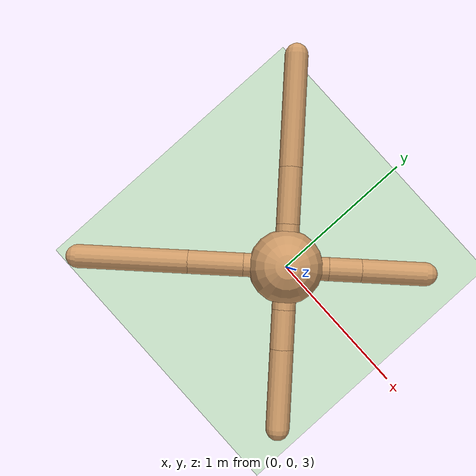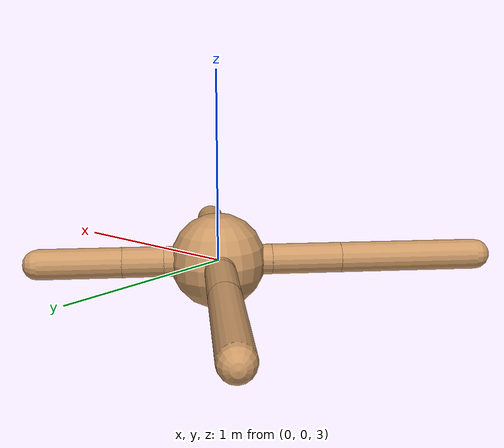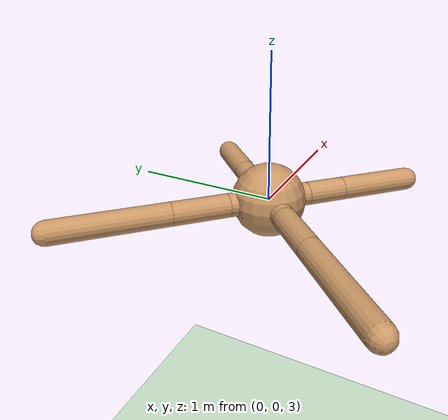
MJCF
<mujoco model="ant">
  <compiler angle="degree" coordinate="local" inertiafromgeom="true" />
  <option integrator="RK4" timestep="0.02" />
  <custom>
    <numeric data="0.0 0.0 0.55 1.0 0.0 0.0 0.0 0.0 1.0 0.0 -1.0 0.0 -1.0 0.0 1.0" name="init_qpos" />
  </custom>
  <default>
    <joint armature="1" damping="1" limited="true" />
    <geom conaffinity="0" condim="3" density="5.0" friction="1 0.5 0.5" margin="0.01" rgba="0.8 0.6 0.4 1" solimp=".8 .8 .01" solref=".02 1" />
  </default>
  <asset>
    <texture builtin="gradient" height="100" rgb1="1 1 1" rgb2="0 0 0" type="skybox" width="100" />
    <texture builtin="flat" height="1278" mark="cross" markrgb="1 1 1" name="texgeom" random="0.01" rgb1="0.8 0.6 0.4" rgb2="0.8 0.6 0.4" type="cube" width="127" />
    <texture builtin="checker" height="100" name="texplane" rgb1="0 0 0" rgb2="0.8 0.8 0.8" type="2d" width="100" />
    <material name="MatPlane" reflectance="0.5" shininess="1" specular="1" texrepeat="60 60" texture="texplane" />
    <material name="geom" texture="texgeom" texuniform="true" />
  </asset>
  <worldbody>
    <light cutoff="100" diffuse="1 1 1" dir="-0 0 -1.3" directional="true" exponent="1" pos="0 0 1.3" specular=".1 .1 .1" />
    <geom conaffinity="1" condim="3" material="MatPlane" name="floor" pos="0 0 0" rgba="0.8 0.9 0.8 1" size="40 40 40" type="plane" />
    <body name="torso" pos="0 0 3.0">
      <geom density="1000" name="torso_geom" pos="0 0 0" size="0.25" type="sphere" />
      <joint armature="0" axis="0 0 1" damping="0" limited="false" margin="0.01" name="root" pos="0 0 0" type="free" />
      <body name="front_left_leg" pos="0 0 0">
        <geom fromto="0.0 0.0 0.0 0.2 0.2 0.0" name="aux_1_geom" size="0.08" type="capsule" />
        <body name="aux_1" pos="0.2 0.2 0">
          <joint axis="0 0 1" name="hip_1" pos="0.0 0.0 0.0" range="-30 30" type="hinge" />
          <geom fromto="0.0 0.0 0.0 0.15237608082070406 0.15237608082070406 0.0" name="left_leg_geom" size="0.08" type="capsule" />
          <body pos="0.15237608082070406 0.15237608082070406 0.0">
            <joint axis="-1 1 0" name="ankle_1" pos="0.0 0.0 0.0" range="30 70" type="hinge" />
            <geom fromto="0.0 0.0 0.0 0.3047521616414081 0.3047521616414081 0.0" name="left_ankle_geom" size="0.08" type="capsule" />
          </body>
        </body>
      </body>
      <body name="front_right_leg" pos="0 0 0">
        <geom fromto="0.0 0.0 0.0 -0.2 0.2 0.0" name="aux_2_geom" size="0.08" type="capsule" />
        <body name="aux_2" pos="-0.2 0.2 0">
          <joint axis="0 0 1" name="hip_2" pos="0.0 0.0 0.0" range="-30 30" type="hinge" />
          <geom fromto="0.0 0.0 0.0 -0.2689053886458958 0.2689053886458958 0.0" name="right_leg_geom" size="0.08" type="capsule" />
          <body pos="-0.2689053886458958 0.2689053886458958 0.0">
            <joint axis="1 1 0" name="ankle_2" pos="0.0 0.0 0.0" range="-70 -30" type="hinge" />
            <geom fromto="0.0 0.0 0.0 -0.5378107772917916 0.5378107772917916 0.0" name="right_ankle_geom" size="0.08" type="capsule" />
          </body>
        </body>
      </body>
      <body name="back_leg" pos="0 0 0">
        <geom fromto="0.0 0.0 0.0 -0.2 -0.2 0.0" name="aux_3_geom" size="0.08" type="capsule" />
        <body name="aux_3" pos="-0.2 -0.2 0">
          <joint axis="0 0 1" name="hip_3" pos="0.0 0.0 0.0" range="-30 30" type="hinge" />
          <geom fromto="0.0 0.0 0.0 -0.2600664491552804 -0.2600664491552804 0.0" name="back_leg_geom" size="0.08" type="capsule" />
          <body pos="-0.2600664491552804 -0.2600664491552804 0.0">
            <joint axis="-1 1 0" name="ankle_3" pos="0.0 0.0 0.0" range="-70 -30" type="hinge" />
            <geom fromto="0.0 0.0 0.0 -0.5201328983105608 -0.5201328983105608 0.0" name="third_ankle_geom" size="0.08" type="capsule" />
          </body>
        </body>
      </body>
      <body name="right_back_leg" pos="0 0 0">
        <geom fromto="0.0 0.0 0.0 0.2 -0.2 0.0" name="aux_4_geom" size="0.08" type="capsule" />
        <body name="aux_4" pos="0.2 -0.2 0">
          <joint axis="0 0 1" name="hip_4" pos="0.0 0.0 0.0" range="-30 30" type="hinge" />
          <geom fromto="0.0 0.0 0.0 0.18532783165362873 -0.18532783165362873 0.0" name="rightback_leg_geom" size="0.08" type="capsule" />
          <body pos="0.18532783165362873 -0.18532783165362873 0.0">
            <joint axis="1 1 0" name="ankle_4" pos="0.0 0.0 0.0" range="30 70" type="hinge" />
            <geom fromto="0.0 0.0 0.0 0.37065566330725747 -0.37065566330725747 0.0" name="fourth_ankle_geom" size="0.08" type="capsule" />
          </body>
        </body>
      </body>
    </body>
  </worldbody>
  <actuator>
    <motor ctrllimited="true" ctrlrange="-150.0 150.0" joint="hip_4" />
    <motor ctrllimited="true" ctrlrange="-150.0 150.0" joint="ankle_4" />
    <motor ctrllimited="true" ctrlrange="-150.0 150.0" joint="hip_1" />
    <motor ctrllimited="true" ctrlrange="-150.0 150.0" joint="ankle_1" />
    <motor ctrllimited="true" ctrlrange="-150.0 150.0" joint="hip_2" />
    <motor ctrllimited="true" ctrlrange="-150.0 150.0" joint="ankle_2" />
    <motor ctrllimited="true" ctrlrange="-150.0 150.0" joint="hip_3" />
    <motor ctrllimited="true" ctrlrange="-150.0 150.0" joint="ankle_3" />
  </actuator>
</mujoco>
